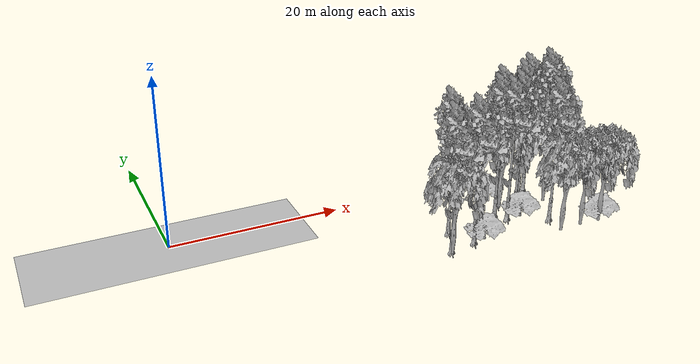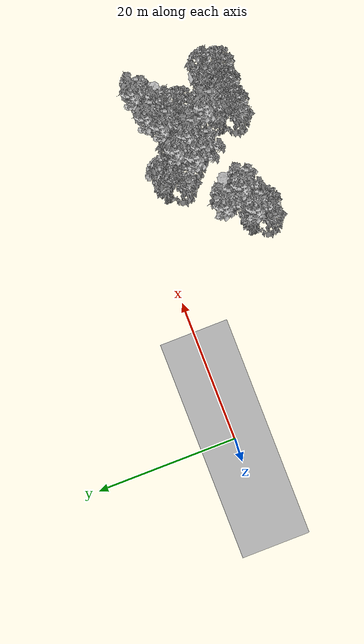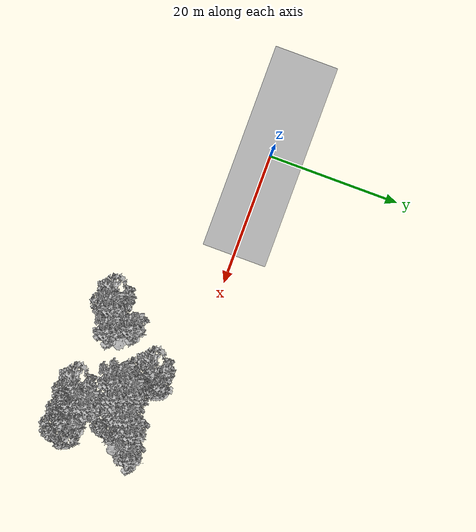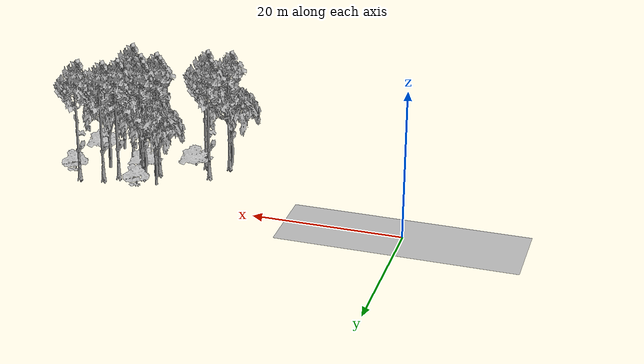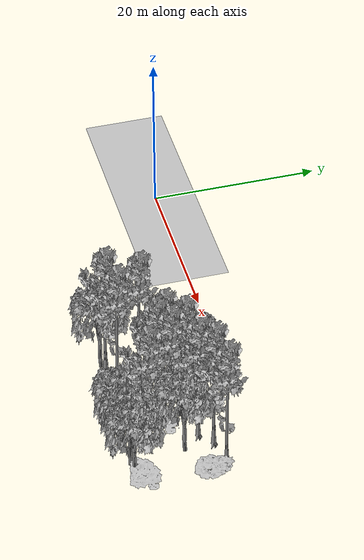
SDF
<sdf version="1.7">
 <world name="default">
  <model name="ground_plane">
   <static>1</static>
   <link name="link">
    <collision name="collision">
     <pose>-50 0 0 0 -0 0</pose>
     <geometry><plane><normal>0 0 1</normal><size>100 100</size></plane></geometry>
     <surface><contact><ode><min_depth>0.01</min_depth><max_vel>0</max_vel></ode></contact></surface>
    </collision>
    <visual name="grass">
     <cast_shadows>0</cast_shadows>
     <geometry>
      <mesh>
       <scale>0.5814285714285714 0.18142857142857144 0.1</scale>
       <uri>file://grass_plane/meshes/grass_plane.dae</uri>
      </mesh>
     </geometry>
    </visual>
   </link>
  </model>
  <model name="Tree 5">
   <static>1</static>
   <pose>39.25403059731241 -8.516198860370325 0 1.57079 -0 0</pose>
   <link name="link">
    <collision name="collision">
     <geometry><mesh><scale>3.5 5 3.5</scale><uri>model://tree_9/meshes/tree_9.obj</uri></mesh></geometry>
    </collision>
    <visual name="visual">
     <geometry><mesh><scale>3.5 5 3.5</scale><uri>model://tree_9/meshes/tree_9.obj</uri></mesh></geometry>
    </visual>
   </link>
  </model>
  <model name="Tree 7">
   <static>1</static>
   <pose>27.646337007123705 -13.712596400036984 0 1.57079 -0 0</pose>
   <link name="link">
    <collision name="collision">
     <geometry><mesh><scale>3.5 5 3.5</scale><uri>model://tree_2/meshes/tree_2.obj</uri></mesh></geometry>
    </collision>
    <visual name="visual">
     <geometry><mesh><scale>3.5 5 3.5</scale><uri>model://tree_2/meshes/tree_2.obj</uri></mesh></geometry>
    </visual>
   </link>
  </model>
  <model name="Tree 11">
   <static>1</static>
   <pose>43.17099553991636 -4.548261400795324 0 1.57079 -0 0</pose>
   <link name="link">
    <collision name="collision">
     <geometry><mesh><scale>3.5 5 3.5</scale><uri>model://tree_9/meshes/tree_9.obj</uri></mesh></geometry>
    </collision>
    <visual name="visual">
     <geometry><mesh><scale>3.5 5 3.5</scale><uri>model://tree_9/meshes/tree_9.obj</uri></mesh></geometry>
    </visual>
   </link>
  </model>
  <model name="Tree 17">
   <static>1</static>
   <pose>31.153207847678388 -12.578742782359573 0 1.57079 -0 0</pose>
   <link name="link">
    <collision name="collision">
     <geometry><mesh><scale>3.5 5 3.5</scale><uri>model://tree_9/meshes/tree_9.obj</uri></mesh></geometry>
    </collision>
    <visual name="visual">
     <geometry><mesh><scale>3.5 5 3.5</scale><uri>model://tree_9/meshes/tree_9.obj</uri></mesh></geometry>
    </visual>
   </link>
  </model>
  <model name="Tree 32">
   <static>1</static>
   <pose>41.490987333355974 -5.887465798529242 0 1.57079 -0 0</pose>
   <link name="link">
    <collision name="collision">
     <geometry><mesh><scale>3.5 5 3.5</scale><uri>model://tree_9/meshes/tree_9.obj</uri></mesh></geometry>
    </collision>
    <visual name="visual">
     <geometry><mesh><scale>3.5 5 3.5</scale><uri>model://tree_9/meshes/tree_9.obj</uri></mesh></geometry>
    </visual>
   </link>
  </model>
  <model name="Tree 33">
   <static>1</static>
   <pose>46.457445796704405 -3.9746720735285184 0 1.57079 -0 0</pose>
   <link name="link">
    <collision name="collision">
     <geometry><mesh><scale>3.5 5 3.5</scale><uri>model://tree_9/meshes/tree_9.obj</uri></mesh></geometry>
    </collision>
    <visual name="visual">
     <geometry><mesh><scale>3.5 5 3.5</scale><uri>model://tree_9/meshes/tree_9.obj</uri></mesh></geometry>
    </visual>
   </link>
  </model>
  <model name="Tree 34">
   <static>1</static>
   <pose>43.55244845924382 -8.021989021581138 0 1.57079 -0 0</pose>
   <link name="link">
    <collision name="collision">
     <geometry><mesh><scale>3.5 5 3.5</scale><uri>model://tree_2/meshes/tree_2.obj</uri></mesh></geometry>
    </collision>
    <visual name="visual">
     <geometry><mesh><scale>3.5 5 3.5</scale><uri>model://tree_2/meshes/tree_2.obj</uri></mesh></geometry>
    </visual>
   </link>
  </model>
  <model name="Tree 47">
   <static>1</static>
   <pose>41.33996712415616 -14.496960765584841 0 1.57079 -0 0</pose>
   <link name="link">
    <collision name="collision">
     <geometry><mesh><scale>3.5 5 3.5</scale><uri>model://tree_2/meshes/tree_2.obj</uri></mesh></geometry>
    </collision>
    <visual name="visual">
     <geometry><mesh><scale>3.5 5 3.5</scale><uri>model://tree_2/meshes/tree_2.obj</uri></mesh></geometry>
    </visual>
   </link>
  </model>
  <model name="Tree 53">
   <static>1</static>
   <pose>38.051714829250486 -4.058607082003714 0 1.57079 -0 0</pose>
   <link name="link">
    <collision name="collision">
     <geometry><mesh><scale>4 2.5 4</scale><uri>model://tree_1/meshes/tree_1.obj</uri></mesh></geometry>
    </collision>
    <visual name="visual">
     <geometry><mesh><scale>4 2.5 4</scale><uri>model://tree_1/meshes/tree_1.obj</uri></mesh></geometry>
    </visual>
   </link>
  </model>
  <model name="Tree 55">
   <static>1</static>
   <pose>35.42685162921045 -4.899434049778652 0 1.57079 -0 0</pose>
   <link name="link">
    <collision name="collision">
     <geometry><mesh><scale>3.5 5 3.5</scale><uri>model://tree_2/meshes/tree_2.obj</uri></mesh></geometry>
    </collision>
    <visual name="visual">
     <geometry><mesh><scale>3.5 5 3.5</scale><uri>model://tree_2/meshes/tree_2.obj</uri></mesh></geometry>
    </visual>
   </link>
  </model>
  <model name="Tree 64">
   <static>1</static>
   <pose>47.20018135532867 -13.900093615132022 0 1.57079 -0 0</pose>
   <link name="link">
    <collision name="collision">
     <geometry><mesh><scale>3 2 3</scale><uri>model://tree_3/meshes/tree_3.obj</uri></mesh></geometry>
    </collision>
    <visual name="visual">
     <geometry><mesh><scale>3 2 3</scale><uri>model://tree_3/meshes/tree_3.obj</uri></mesh></geometry>
    </visual>
   </link>
  </model>
  <model name="Tree 65">
   <static>1</static>
   <pose>41.775128744162544 -11.78853087879709 0 1.57079 -0 0</pose>
   <link name="link">
    <collision name="collision">
     <geometry><mesh><scale>3.5 5 3.5</scale><uri>model://tree_9/meshes/tree_9.obj</uri></mesh></geometry>
    </collision>
    <visual name="visual">
     <geometry><mesh><scale>3.5 5 3.5</scale><uri>model://tree_9/meshes/tree_9.obj</uri></mesh></geometry>
    </visual>
   </link>
  </model>
  <model name="Tree 75">
   <static>1</static>
   <pose>27.90785239308343 -13.182587866353114 0 1.57079 -0 0</pose>
   <link name="link">
    <collision name="collision">
     <geometry><mesh><scale>3.5 5 3.5</scale><uri>model://tree_9/meshes/tree_9.obj</uri></mesh></geometry>
    </collision>
    <visual name="visual">
     <geometry><mesh><scale>3.5 5 3.5</scale><uri>model://tree_9/meshes/tree_9.obj</uri></mesh></geometry>
    </visual>
   </link>
  </model>
  <model name="Tree 80">
   <static>1</static>
   <pose>38.126052480972064 -6.563324267120814 0 1.57079 -0 0</pose>
   <link name="link">
    <collision name="collision">
     <geometry><mesh><scale>3.5 5 3.5</scale><uri>model://tree_9/meshes/tree_9.obj</uri></mesh></geometry>
    </collision>
    <visual name="visual">
     <geometry><mesh><scale>3.5 5 3.5</scale><uri>model://tree_9/meshes/tree_9.obj</uri></mesh></geometry>
    </visual>
   </link>
  </model>
  <model name="Tree 91">
   <static>1</static>
   <pose>46.575541847851696 -14.501487808345505 0 1.57079 -0 0</pose>
   <link name="link">
    <collision name="collision">
     <geometry><mesh><scale>3.5 5 3.5</scale><uri>model://tree_2/meshes/tree_2.obj</uri></mesh></geometry>
    </collision>
    <visual name="visual">
     <geometry><mesh><scale>3.5 5 3.5</scale><uri>model://tree_2/meshes/tree_2.obj</uri></mesh></geometry>
    </visual>
   </link>
  </model>
  <model name="Tree 98">
   <static>1</static>
   <pose>32.60885110623016 -12.47859435849654 0 1.57079 -0 0</pose>
   <link name="link">
    <collision name="collision">
     <geometry><mesh><scale>3 2 3</scale><uri>model://tree_3/meshes/tree_3.obj</uri></mesh></geometry>
    </collision>
    <visual name="visual">
     <geometry><mesh><scale>3 2 3</scale><uri>model://tree_3/meshes/tree_3.obj</uri></mesh></geometry>
    </visual>
   </link>
  </model>
  <model name="Tree 107">
   <static>1</static>
   <pose>47.939293316817 -5.915156778948802 0 1.57079 -0 0</pose>
   <link name="link">
    <collision name="collision">
     <geometry><mesh><scale>4 2.5 4</scale><uri>model://tree_1/meshes/tree_1.obj</uri></mesh></geometry>
    </collision>
    <visual name="visual">
     <geometry><mesh><scale>4 2.5 4</scale><uri>model://tree_1/meshes/tree_1.obj</uri></mesh></geometry>
    </visual>
   </link>
  </model>
  <model name="Tree 114">
   <static>1</static>
   <pose>29.59862233997707 -9.624100853284624 0 1.57079 -0 0</pose>
   <link name="link">
    <collision name="collision">
     <geometry><mesh><scale>3.5 5 3.5</scale><uri>model://tree_9/meshes/tree_9.obj</uri></mesh></geometry>
    </collision>
    <visual name="visual">
     <geometry><mesh><scale>3.5 5 3.5</scale><uri>model://tree_9/meshes/tree_9.obj</uri></mesh></geometry>
    </visual>
   </link>
  </model>
  <model name="Tree 120">
   <static>1</static>
   <pose>36.474855392511685 -8.4973097068623 0 1.57079 -0 0</pose>
   <link name="link">
    <collision name="collision">
     <geometry><mesh><scale>3.5 5 3.5</scale><uri>model://tree_9/meshes/tree_9.obj</uri></mesh></geometry>
    </collision>
    <visual name="visual">
     <geometry><mesh><scale>3.5 5 3.5</scale><uri>model://tree_9/meshes/tree_9.obj</uri></mesh></geometry>
    </visual>
   </link>
  </model>
  <model name="Tree 124">
   <static>1</static>
   <pose>44.118024974425936 -14.381102582697078 0 1.57079 -0 0</pose>
   <link name="link">
    <collision name="collision">
     <geometry><mesh><scale>3.5 5 3.5</scale><uri>model://tree_2/meshes/tree_2.obj</uri></mesh></geometry>
    </collision>
    <visual name="visual">
     <geometry><mesh><scale>3.5 5 3.5</scale><uri>model://tree_2/meshes/tree_2.obj</uri></mesh></geometry>
    </visual>
   </link>
  </model>
  <model name="Tree 126">
   <static>1</static>
   <pose>39.12705274697949 -9.867400222911101 0 1.57079 -0 0</pose>
   <link name="link">
    <collision name="collision">
     <geometry><mesh><scale>3 2 3</scale><uri>model://tree_3/meshes/tree_3.obj</uri></mesh></geometry>
    </collision>
    <visual name="visual">
     <geometry><mesh><scale>3 2 3</scale><uri>model://tree_3/meshes/tree_3.obj</uri></mesh></geometry>
    </visual>
   </link>
  </model>
  <model name="Tree 149">
   <static>1</static>
   <pose>37.90138248488461 -7.138540028387834 0 1.57079 -0 0</pose>
   <link name="link">
    <collision name="collision">
     <geometry><mesh><scale>3.5 5 3.5</scale><uri>model://tree_2/meshes/tree_2.obj</uri></mesh></geometry>
    </collision>
    <visual name="visual">
     <geometry><mesh><scale>3.5 5 3.5</scale><uri>model://tree_2/meshes/tree_2.obj</uri></mesh></geometry>
    </visual>
   </link>
  </model>
  <model name="Tree 165">
   <static>1</static>
   <pose>37.41165080832137 -9.664717516468684 0 1.57079 -0 0</pose>
   <link name="link">
    <collision name="collision">
     <geometry><mesh><scale>3.5 5 3.5</scale><uri>model://tree_9/meshes/tree_9.obj</uri></mesh></geometry>
    </collision>
    <visual name="visual">
     <geometry><mesh><scale>3.5 5 3.5</scale><uri>model://tree_9/meshes/tree_9.obj</uri></mesh></geometry>
    </visual>
   </link>
  </model>
 </world>
</sdf>
